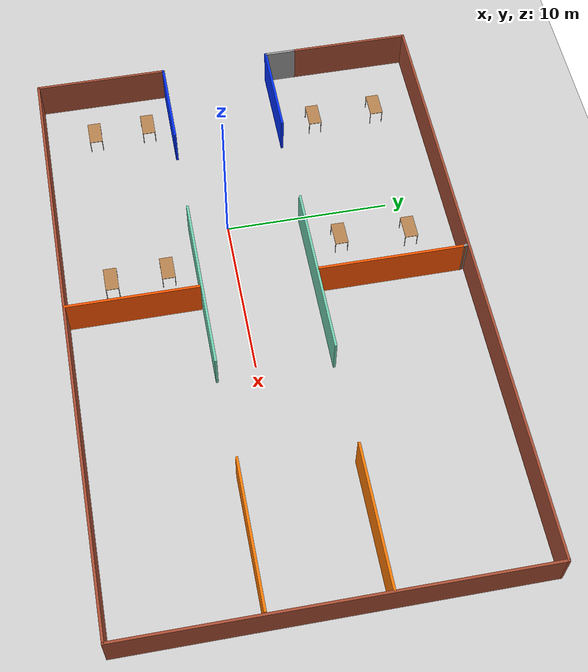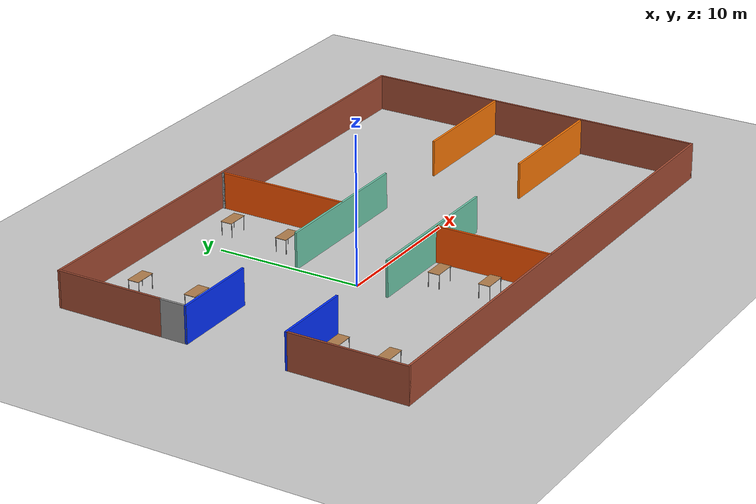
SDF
<sdf version="1.6">
 <world name="default">
  <model name="ground_plane">
   <static>1</static>
   <link name="link">
    <collision name="collision">
     <geometry><plane><normal>0 0 1</normal><size>100 100</size></plane></geometry>
     <surface><friction><ode><mu>100</mu><mu2>50</mu2></ode></friction></surface>
    </collision>
    <visual name="visual">
     <cast_shadows>0</cast_shadows>
     <geometry><plane><normal>0 0 1</normal><size>100 100</size></plane></geometry>
     <material>
      <script><uri>file://media/materials/scripts/gazebo.material</uri><name>Gazebo/Grey</name></script>
     </material>
    </visual>
   </link>
  </model>
  <model name="Chris.world">
   <pose>6.94 1.64 0 0 -0 0</pose>
   <link name="Wall_0">
    <collision name="Wall_0_Collision">
     <geometry><box><size>8.25 0.15 2.5</size></box></geometry>
     <pose>0 0 1.25 0 -0 0</pose>
    </collision>
    <visual name="Wall_0_Visual">
     <pose>0 0 1.25 0 -0 0</pose>
     <geometry><box><size>8.25 0.15 2.5</size></box></geometry>
     <material>
      <script><uri>file://media/materials/scripts/gazebo.material</uri><name>Gazebo/Bricks</name></script>
      <ambient>1 1 1 1</ambient>
     </material>
     <meta><layer>0</layer></meta>
    </visual>
    <pose>-18.3 -8 0 0 0 -1.5708</pose>
   </link>
   <link name="Wall_1">
    <collision name="Wall_1_Collision">
     <geometry><box><size>37 0.15 2.5</size></box></geometry>
     <pose>0 0 1.25 0 -0 0</pose>
    </collision>
    <visual name="Wall_1_Visual">
     <pose>0 0 1.25 0 -0 0</pose>
     <geometry><box><size>37 0.15 2.5</size></box></geometry>
     <material>
      <script><uri>file://media/materials/scripts/gazebo.material</uri><name>Gazebo/Bricks</name></script>
      <ambient>1 1 1 1</ambient>
     </material>
     <meta><layer>0</layer></meta>
    </visual>
    <pose>0.125 -12.05 0 0 -0 0</pose>
   </link>
   <link name="Wall_12">
    <collision name="Wall_12_Collision">
     <geometry><box><size>8.5 0.15 2.5</size></box></geometry>
     <pose>0 0 1.25 0 -0 0</pose>
    </collision>
    <visual name="Wall_12_Visual">
     <pose>0 0 1.25 0 -0 0</pose>
     <geometry><box><size>8.5 0.15 2.5</size></box></geometry>
     <material>
      <script><uri>file://media/materials/scripts/gazebo.material</uri><name>Gazebo/Grey</name></script>
      <ambient>0.996078 0.47451 0.0196078 1</ambient>
     </material>
     <meta><layer>0</layer></meta>
    </visual>
    <pose>14.2814 2.85629 0 0 -0 0</pose>
   </link>
   <link name="Wall_14">
    <collision name="Wall_14_Collision">
     <geometry><box><size>5.5 0.15 2.5</size></box></geometry>
     <pose>0 0 1.25 0 -0 0</pose>
    </collision>
    <visual name="Wall_14_Visual">
     <pose>0 0 1.25 0 -0 0</pose>
     <geometry><box><size>5.5 0.15 2.5</size></box></geometry>
     <material>
      <script><uri>file://media/materials/scripts/gazebo.material</uri><name>Gazebo/Grey</name></script>
      <ambient>0.00784314 0.188235 1 1</ambient>
     </material>
     <meta><layer>0</layer></meta>
    </visual>
    <pose>-15.625 -3.95 0 0 -0 0</pose>
   </link>
   <link name="Wall_17">
    <collision name="Wall_17_Collision">
     <geometry><box><size>11 0.15 2.5</size></box></geometry>
     <pose>0 0 1.25 0 -0 0</pose>
    </collision>
    <visual name="Wall_17_Visual">
     <pose>0 0 1.25 0 -0 0</pose>
     <geometry><box><size>11 0.15 2.5</size></box></geometry>
     <material>
      <script><uri>file://media/materials/scripts/gazebo.material</uri><name>Gazebo/Grey</name></script>
      <ambient>0.435294 0.796078 0.67451 1</ambient>
     </material>
     <meta><layer>0</layer></meta>
    </visual>
    <pose>-1.82182 -3.99491 0 0 -0 0</pose>
   </link>
   <link name="Wall_19">
    <collision name="Wall_19_Collision">
     <geometry><box><size>8.75 0.15 2.5</size></box></geometry>
     <pose>0 0 1.25 0 -0 0</pose>
    </collision>
    <visual name="Wall_19_Visual">
     <pose>0 0 1.25 0 -0 0</pose>
     <geometry><box><size>8.75 0.15 2.5</size></box></geometry>
     <material>
      <script><uri>file://media/materials/scripts/gazebo.material</uri><name>Gazebo/Grey</name></script>
      <ambient>0.996078 0.47451 0.0196078 1</ambient>
     </material>
     <meta><layer>0</layer></meta>
    </visual>
    <pose>14.0613 -3.81137 0 0 -0 0</pose>
   </link>
   <link name="Wall_2">
    <collision name="Wall_2_Collision">
     <geometry><box><size>24.25 0.15 2.5</size></box></geometry>
     <pose>0 0 1.25 0 -0 0</pose>
    </collision>
    <visual name="Wall_2_Visual">
     <pose>0 0 1.25 0 -0 0</pose>
     <geometry><box><size>24.25 0.15 2.5</size></box></geometry>
     <material>
      <script><uri>file://media/materials/scripts/gazebo.material</uri><name>Gazebo/Bricks</name></script>
      <ambient>1 1 1 1</ambient>
     </material>
     <meta><layer>0</layer></meta>
    </visual>
    <pose>18.55 0 0 0 -0 1.5708</pose>
   </link>
   <link name="Wall_21">
    <collision name="Wall_21_Collision">
     <geometry><box><size>8 0.15 2.5</size></box></geometry>
     <pose>0 0 1.25 0 -0 0</pose>
    </collision>
    <visual name="Wall_21_Visual">
     <pose>0 0 1.25 0 -0 0</pose>
     <geometry><box><size>8 0.15 2.5</size></box></geometry>
     <material>
      <script><uri>file://media/materials/scripts/gazebo.material</uri><name>Gazebo/Grey</name></script>
      <ambient>1 0.333333 0 1</ambient>
     </material>
     <meta><layer>0</layer></meta>
    </visual>
    <pose>-1.46527 -8.08455 0 0 -0 1.5708</pose>
   </link>
   <link name="Wall_23">
    <collision name="Wall_23_Collision">
     <geometry><box><size>9 0.15 2.5</size></box></geometry>
     <pose>0 0 1.25 0 -0 0</pose>
    </collision>
    <visual name="Wall_23_Visual">
     <pose>0 0 1.25 0 -0 0</pose>
     <geometry><box><size>9 0.15 2.5</size></box></geometry>
     <material>
      <script><uri>file://media/materials/scripts/gazebo.material</uri><name>Gazebo/Grey</name></script>
      <ambient>1 0.333333 0 1</ambient>
     </material>
     <meta><layer>0</layer></meta>
    </visual>
    <pose>-1.46527 7.36545 0 0 -0 1.5708</pose>
   </link>
   <link name="Wall_24">
    <collision name="Wall_24_Collision">
     <geometry><box><size>0.25 0.15 2.5</size></box></geometry>
     <pose>0 0 1.25 0 -0 0</pose>
    </collision>
    <visual name="Wall_24_Visual">
     <pose>0 0 1.25 0 -0 0</pose>
     <geometry><box><size>0.25 0.15 2.5</size></box></geometry>
     <material>
      <script><uri>file://media/materials/scripts/gazebo.material</uri><name>Gazebo/Grey</name></script>
      <ambient>1 1 1 1</ambient>
     </material>
     <meta><layer>0</layer></meta>
    </visual>
    <pose>-1.47821 11.8387 0 0 -0 1.8326</pose>
   </link>
   <link name="Wall_25">
    <collision name="Wall_25_Collision">
     <geometry><box><size>0.25 0.15 2.5</size></box></geometry>
     <pose>0 0 1.25 0 -0 0</pose>
    </collision>
    <visual name="Wall_25_Visual">
     <pose>0 0 1.25 0 -0 0</pose>
     <geometry><box><size>0.25 0.15 2.5</size></box></geometry>
     <material>
      <script><uri>file://media/materials/scripts/gazebo.material</uri><name>Gazebo/Grey</name></script>
      <ambient>1 1 1 1</ambient>
     </material>
     <meta><layer>0</layer></meta>
    </visual>
    <pose>-1.47821 11.8387 0 0 0 -1.309</pose>
   </link>
   <link name="Wall_3">
    <collision name="Wall_3_Collision">
     <geometry><box><size>37.25 0.15 2.5</size></box></geometry>
     <pose>0 0 1.25 0 -0 0</pose>
    </collision>
    <visual name="Wall_3_Visual">
     <pose>0 0 1.25 0 -0 0</pose>
     <geometry><box><size>37.25 0.15 2.5</size></box></geometry>
     <material>
      <script><uri>file://media/materials/scripts/gazebo.material</uri><name>Gazebo/Bricks</name></script>
      <ambient>1 1 1 1</ambient>
     </material>
     <meta><layer>0</layer></meta>
    </visual>
    <pose>0 12.05 0 0 -0 3.14159</pose>
   </link>
   <link name="Wall_4">
    <collision name="Wall_4_Collision">
     <geometry><box><size>7.5 0.15 2.5</size></box></geometry>
     <pose>0 0 1.25 0 -0 0</pose>
    </collision>
    <visual name="Wall_4_Visual">
     <pose>0 0 1.25 0 -0 0</pose>
     <geometry><box><size>7.5 0.15 2.5</size></box></geometry>
     <material>
      <script><uri>file://media/materials/scripts/gazebo.material</uri><name>Gazebo/Bricks</name></script>
      <ambient>1 1 1 1</ambient>
     </material>
     <meta><layer>0</layer></meta>
    </visual>
    <pose>-18.55 8.375 0 0 0 -1.5708</pose>
   </link>
   <link name="Wall_5">
    <collision name="Wall_5_Collision">
     <geometry><box><size>2 0.15 2.5</size></box></geometry>
     <pose>0 0 1.25 0 -0 0</pose>
    </collision>
    <visual name="Wall_5_Visual">
     <pose>0 0 1.25 0 -0 0</pose>
     <geometry><box><size>2 0.15 2.5</size></box></geometry>
     <material>
      <script><uri>file://media/materials/scripts/gazebo.material</uri><name>Gazebo/Grey</name></script>
      <ambient>1 1 1 1</ambient>
     </material>
     <meta><layer>0</layer></meta>
    </visual>
    <pose>-18.55 3.775 0 0 0 -1.5708</pose>
   </link>
   <link name="Wall_6">
    <collision name="Wall_6_Collision">
     <geometry><box><size>6 0.15 2.5</size></box></geometry>
     <pose>0 0 1.25 0 -0 0</pose>
    </collision>
    <visual name="Wall_6_Visual">
     <pose>0 0 1.25 0 -0 0</pose>
     <geometry><box><size>6 0.15 2.5</size></box></geometry>
     <material>
      <script><uri>file://media/materials/scripts/gazebo.material</uri><name>Gazebo/Grey</name></script>
      <ambient>0.00784314 0.188235 1 1</ambient>
     </material>
     <meta><layer>0</layer></meta>
    </visual>
    <pose>-15.625 2.85 0 0 -0 0</pose>
   </link>
   <link name="Wall_9">
    <collision name="Wall_9_Collision">
     <geometry><box><size>10.75 0.15 2.5</size></box></geometry>
     <pose>0 0 1.25 0 -0 0</pose>
    </collision>
    <visual name="Wall_9_Visual">
     <pose>0 0 1.25 0 -0 0</pose>
     <geometry><box><size>10.75 0.15 2.5</size></box></geometry>
     <material>
      <script><uri>file://media/materials/scripts/gazebo.material</uri><name>Gazebo/Grey</name></script>
      <ambient>0.435294 0.796078 0.67451 1</ambient>
     </material>
     <meta><layer>0</layer></meta>
    </visual>
    <pose>-1.47151 2.85629 0 0 -0 0</pose>
   </link>
   <static>1</static>
  </model>
  <model name="table">
   <static>1</static>
   <link name="link">
    <collision name="surface">
     <pose>0 0 1 0 -0 0</pose>
     <geometry><box><size>1.5 0.8 0.03</size></box></geometry>
     <surface><friction><ode><mu>0.6</mu><mu2>0.6</mu2></ode></friction></surface>
    </collision>
    <visual name="visual1">
     <pose>0 0 1 0 -0 0</pose>
     <geometry><box><size>1.5 0.8 0.03</size></box></geometry>
     <material>
      <script><uri>file://media/materials/scripts/gazebo.material</uri><name>Gazebo/Wood</name></script>
     </material>
    </visual>
    <collision name="front_left_leg">
     <pose>0.68 0.38 0.5 0 -0 0</pose>
     <geometry><cylinder><radius>0.02</radius><length>1</length></cylinder></geometry>
    </collision>
    <visual name="front_left_leg">
     <pose>0.68 0.38 0.5 0 -0 0</pose>
     <geometry><cylinder><radius>0.02</radius><length>1</length></cylinder></geometry>
     <material>
      <script><uri>file://media/materials/scripts/gazebo.material</uri><name>Gazebo/Grey</name></script>
     </material>
    </visual>
    <collision name="front_right_leg">
     <pose>0.68 -0.38 0.5 0 -0 0</pose>
     <geometry><cylinder><radius>0.02</radius><length>1</length></cylinder></geometry>
    </collision>
    <visual name="front_right_leg">
     <pose>0.68 -0.38 0.5 0 -0 0</pose>
     <geometry><cylinder><radius>0.02</radius><length>1</length></cylinder></geometry>
     <material>
      <script><uri>file://media/materials/scripts/gazebo.material</uri><name>Gazebo/Grey</name></script>
     </material>
    </visual>
    <collision name="back_right_leg">
     <pose>-0.68 -0.38 0.5 0 -0 0</pose>
     <geometry><cylinder><radius>0.02</radius><length>1</length></cylinder></geometry>
    </collision>
    <visual name="back_right_leg">
     <pose>-0.68 -0.38 0.5 0 -0 0</pose>
     <geometry><cylinder><radius>0.02</radius><length>1</length></cylinder></geometry>
     <material>
      <script><uri>file://media/materials/scripts/gazebo.material</uri><name>Gazebo/Grey</name></script>
     </material>
    </visual>
    <collision name="back_left_leg">
     <pose>-0.68 0.38 0.5 0 -0 0</pose>
     <geometry><cylinder><radius>0.02</radius><length>1</length></cylinder></geometry>
    </collision>
    <visual name="back_left_leg">
     <pose>-0.68 0.38 0.5 0 -0 0</pose>
     <geometry><cylinder><radius>0.02</radius><length>1</length></cylinder></geometry>
     <material>
      <script><uri>file://media/materials/scripts/gazebo.material</uri><name>Gazebo/Grey</name></script>
     </material>
    </visual>
   </link>
   <pose>2.8826 -4.13337 0 0 -0 0</pose>
  </model>
  <model name="table_clone">
   <static>1</static>
   <link name="link">
    <collision name="surface">
     <pose>0 0 1 0 -0 0</pose>
     <geometry><box><size>1.5 0.8 0.03</size></box></geometry>
     <surface><friction><ode><mu>0.6</mu><mu2>0.6</mu2></ode></friction></surface>
    </collision>
    <visual name="visual1">
     <pose>0 0 1 0 -0 0</pose>
     <geometry><box><size>1.5 0.8 0.03</size></box></geometry>
     <material>
      <script><uri>file://media/materials/scripts/gazebo.material</uri><name>Gazebo/Wood</name></script>
     </material>
    </visual>
    <collision name="front_left_leg">
     <pose>0.68 0.38 0.5 0 -0 0</pose>
     <geometry><cylinder><radius>0.02</radius><length>1</length></cylinder></geometry>
    </collision>
    <visual name="front_left_leg">
     <pose>0.68 0.38 0.5 0 -0 0</pose>
     <geometry><cylinder><radius>0.02</radius><length>1</length></cylinder></geometry>
     <material>
      <script><uri>file://media/materials/scripts/gazebo.material</uri><name>Gazebo/Grey</name></script>
     </material>
    </visual>
    <collision name="front_right_leg">
     <pose>0.68 -0.38 0.5 0 -0 0</pose>
     <geometry><cylinder><radius>0.02</radius><length>1</length></cylinder></geometry>
    </collision>
    <visual name="front_right_leg">
     <pose>0.68 -0.38 0.5 0 -0 0</pose>
     <geometry><cylinder><radius>0.02</radius><length>1</length></cylinder></geometry>
     <material>
      <script><uri>file://media/materials/scripts/gazebo.material</uri><name>Gazebo/Grey</name></script>
     </material>
    </visual>
    <collision name="back_right_leg">
     <pose>-0.68 -0.38 0.5 0 -0 0</pose>
     <geometry><cylinder><radius>0.02</radius><length>1</length></cylinder></geometry>
    </collision>
    <visual name="back_right_leg">
     <pose>-0.68 -0.38 0.5 0 -0 0</pose>
     <geometry><cylinder><radius>0.02</radius><length>1</length></cylinder></geometry>
     <material>
      <script><uri>file://media/materials/scripts/gazebo.material</uri><name>Gazebo/Grey</name></script>
     </material>
    </visual>
    <collision name="back_left_leg">
     <pose>-0.68 0.38 0.5 0 -0 0</pose>
     <geometry><cylinder><radius>0.02</radius><length>1</length></cylinder></geometry>
    </collision>
    <visual name="back_left_leg">
     <pose>-0.68 0.38 0.5 0 -0 0</pose>
     <geometry><cylinder><radius>0.02</radius><length>1</length></cylinder></geometry>
     <material>
      <script><uri>file://media/materials/scripts/gazebo.material</uri><name>Gazebo/Grey</name></script>
     </material>
    </visual>
   </link>
   <pose>3.07018 -7.55176 0 0 -0 0</pose>
  </model>
  <model name="table_clone_0">
   <static>1</static>
   <link name="link">
    <collision name="surface">
     <pose>0 0 1 0 -0 0</pose>
     <geometry><box><size>1.5 0.8 0.03</size></box></geometry>
     <surface><friction><ode><mu>0.6</mu><mu2>0.6</mu2></ode></friction></surface>
    </collision>
    <visual name="visual1">
     <pose>0 0 1 0 -0 0</pose>
     <geometry><box><size>1.5 0.8 0.03</size></box></geometry>
     <material>
      <script><uri>file://media/materials/scripts/gazebo.material</uri><name>Gazebo/Wood</name></script>
     </material>
    </visual>
    <collision name="front_left_leg">
     <pose>0.68 0.38 0.5 0 -0 0</pose>
     <geometry><cylinder><radius>0.02</radius><length>1</length></cylinder></geometry>
    </collision>
    <visual name="front_left_leg">
     <pose>0.68 0.38 0.5 0 -0 0</pose>
     <geometry><cylinder><radius>0.02</radius><length>1</length></cylinder></geometry>
     <material>
      <script><uri>file://media/materials/scripts/gazebo.material</uri><name>Gazebo/Grey</name></script>
     </material>
    </visual>
    <collision name="front_right_leg">
     <pose>0.68 -0.38 0.5 0 -0 0</pose>
     <geometry><cylinder><radius>0.02</radius><length>1</length></cylinder></geometry>
    </collision>
    <visual name="front_right_leg">
     <pose>0.68 -0.38 0.5 0 -0 0</pose>
     <geometry><cylinder><radius>0.02</radius><length>1</length></cylinder></geometry>
     <material>
      <script><uri>file://media/materials/scripts/gazebo.material</uri><name>Gazebo/Grey</name></script>
     </material>
    </visual>
    <collision name="back_right_leg">
     <pose>-0.68 -0.38 0.5 0 -0 0</pose>
     <geometry><cylinder><radius>0.02</radius><length>1</length></cylinder></geometry>
    </collision>
    <visual name="back_right_leg">
     <pose>-0.68 -0.38 0.5 0 -0 0</pose>
     <geometry><cylinder><radius>0.02</radius><length>1</length></cylinder></geometry>
     <material>
      <script><uri>file://media/materials/scripts/gazebo.material</uri><name>Gazebo/Grey</name></script>
     </material>
    </visual>
    <collision name="back_left_leg">
     <pose>-0.68 0.38 0.5 0 -0 0</pose>
     <geometry><cylinder><radius>0.02</radius><length>1</length></cylinder></geometry>
    </collision>
    <visual name="back_left_leg">
     <pose>-0.68 0.38 0.5 0 -0 0</pose>
     <geometry><cylinder><radius>0.02</radius><length>1</length></cylinder></geometry>
     <material>
      <script><uri>file://media/materials/scripts/gazebo.material</uri><name>Gazebo/Grey</name></script>
     </material>
    </visual>
   </link>
   <pose>-8.38132 -3.84725 0 0 -0 0</pose>
  </model>
  <model name="table_clone_1">
   <static>1</static>
   <link name="link">
    <collision name="surface">
     <pose>0 0 1 0 -0 0</pose>
     <geometry><box><size>1.5 0.8 0.03</size></box></geometry>
     <surface><friction><ode><mu>0.6</mu><mu2>0.6</mu2></ode></friction></surface>
    </collision>
    <visual name="visual1">
     <pose>0 0 1 0 -0 0</pose>
     <geometry><box><size>1.5 0.8 0.03</size></box></geometry>
     <material>
      <script><uri>file://media/materials/scripts/gazebo.material</uri><name>Gazebo/Wood</name></script>
     </material>
    </visual>
    <collision name="front_left_leg">
     <pose>0.68 0.38 0.5 0 -0 0</pose>
     <geometry><cylinder><radius>0.02</radius><length>1</length></cylinder></geometry>
    </collision>
    <visual name="front_left_leg">
     <pose>0.68 0.38 0.5 0 -0 0</pose>
     <geometry><cylinder><radius>0.02</radius><length>1</length></cylinder></geometry>
     <material>
      <script><uri>file://media/materials/scripts/gazebo.material</uri><name>Gazebo/Grey</name></script>
     </material>
    </visual>
    <collision name="front_right_leg">
     <pose>0.68 -0.38 0.5 0 -0 0</pose>
     <geometry><cylinder><radius>0.02</radius><length>1</length></cylinder></geometry>
    </collision>
    <visual name="front_right_leg">
     <pose>0.68 -0.38 0.5 0 -0 0</pose>
     <geometry><cylinder><radius>0.02</radius><length>1</length></cylinder></geometry>
     <material>
      <script><uri>file://media/materials/scripts/gazebo.material</uri><name>Gazebo/Grey</name></script>
     </material>
    </visual>
    <collision name="back_right_leg">
     <pose>-0.68 -0.38 0.5 0 -0 0</pose>
     <geometry><cylinder><radius>0.02</radius><length>1</length></cylinder></geometry>
    </collision>
    <visual name="back_right_leg">
     <pose>-0.68 -0.38 0.5 0 -0 0</pose>
     <geometry><cylinder><radius>0.02</radius><length>1</length></cylinder></geometry>
     <material>
      <script><uri>file://media/materials/scripts/gazebo.material</uri><name>Gazebo/Grey</name></script>
     </material>
    </visual>
    <collision name="back_left_leg">
     <pose>-0.68 0.38 0.5 0 -0 0</pose>
     <geometry><cylinder><radius>0.02</radius><length>1</length></cylinder></geometry>
    </collision>
    <visual name="back_left_leg">
     <pose>-0.68 0.38 0.5 0 -0 0</pose>
     <geometry><cylinder><radius>0.02</radius><length>1</length></cylinder></geometry>
     <material>
      <script><uri>file://media/materials/scripts/gazebo.material</uri><name>Gazebo/Grey</name></script>
     </material>
    </visual>
   </link>
   <pose>-8.26484 -7.26701 0 0 -0 0</pose>
  </model>
  <model name="table_clone_2">
   <static>1</static>
   <link name="link">
    <collision name="surface">
     <pose>0 0 1 0 -0 0</pose>
     <geometry><box><size>1.5 0.8 0.03</size></box></geometry>
     <surface><friction><ode><mu>0.6</mu><mu2>0.6</mu2></ode></friction></surface>
    </collision>
    <visual name="visual1">
     <pose>0 0 1 0 -0 0</pose>
     <geometry><box><size>1.5 0.8 0.03</size></box></geometry>
     <material>
      <script><uri>file://media/materials/scripts/gazebo.material</uri><name>Gazebo/Wood</name></script>
     </material>
    </visual>
    <collision name="front_left_leg">
     <pose>0.68 0.38 0.5 0 -0 0</pose>
     <geometry><cylinder><radius>0.02</radius><length>1</length></cylinder></geometry>
    </collision>
    <visual name="front_left_leg">
     <pose>0.68 0.38 0.5 0 -0 0</pose>
     <geometry><cylinder><radius>0.02</radius><length>1</length></cylinder></geometry>
     <material>
      <script><uri>file://media/materials/scripts/gazebo.material</uri><name>Gazebo/Grey</name></script>
     </material>
    </visual>
    <collision name="front_right_leg">
     <pose>0.68 -0.38 0.5 0 -0 0</pose>
     <geometry><cylinder><radius>0.02</radius><length>1</length></cylinder></geometry>
    </collision>
    <visual name="front_right_leg">
     <pose>0.68 -0.38 0.5 0 -0 0</pose>
     <geometry><cylinder><radius>0.02</radius><length>1</length></cylinder></geometry>
     <material>
      <script><uri>file://media/materials/scripts/gazebo.material</uri><name>Gazebo/Grey</name></script>
     </material>
    </visual>
    <collision name="back_right_leg">
     <pose>-0.68 -0.38 0.5 0 -0 0</pose>
     <geometry><cylinder><radius>0.02</radius><length>1</length></cylinder></geometry>
    </collision>
    <visual name="back_right_leg">
     <pose>-0.68 -0.38 0.5 0 -0 0</pose>
     <geometry><cylinder><radius>0.02</radius><length>1</length></cylinder></geometry>
     <material>
      <script><uri>file://media/materials/scripts/gazebo.material</uri><name>Gazebo/Grey</name></script>
     </material>
    </visual>
    <collision name="back_left_leg">
     <pose>-0.68 0.38 0.5 0 -0 0</pose>
     <geometry><cylinder><radius>0.02</radius><length>1</length></cylinder></geometry>
    </collision>
    <visual name="back_left_leg">
     <pose>-0.68 0.38 0.5 0 -0 0</pose>
     <geometry><cylinder><radius>0.02</radius><length>1</length></cylinder></geometry>
     <material>
      <script><uri>file://media/materials/scripts/gazebo.material</uri><name>Gazebo/Grey</name></script>
     </material>
    </visual>
   </link>
   <pose>2.25752 6.57312 0 0 -0 0</pose>
  </model>
  <model name="table_clone_3">
   <static>1</static>
   <link name="link">
    <collision name="surface">
     <pose>0 0 1 0 -0 0</pose>
     <geometry><box><size>1.5 0.8 0.03</size></box></geometry>
     <surface><friction><ode><mu>0.6</mu><mu2>0.6</mu2></ode></friction></surface>
    </collision>
    <visual name="visual1">
     <pose>0 0 1 0 -0 0</pose>
     <geometry><box><size>1.5 0.8 0.03</size></box></geometry>
     <material>
      <script><uri>file://media/materials/scripts/gazebo.material</uri><name>Gazebo/Wood</name></script>
     </material>
    </visual>
    <collision name="front_left_leg">
     <pose>0.68 0.38 0.5 0 -0 0</pose>
     <geometry><cylinder><radius>0.02</radius><length>1</length></cylinder></geometry>
    </collision>
    <visual name="front_left_leg">
     <pose>0.68 0.38 0.5 0 -0 0</pose>
     <geometry><cylinder><radius>0.02</radius><length>1</length></cylinder></geometry>
     <material>
      <script><uri>file://media/materials/scripts/gazebo.material</uri><name>Gazebo/Grey</name></script>
     </material>
    </visual>
    <collision name="front_right_leg">
     <pose>0.68 -0.38 0.5 0 -0 0</pose>
     <geometry><cylinder><radius>0.02</radius><length>1</length></cylinder></geometry>
    </collision>
    <visual name="front_right_leg">
     <pose>0.68 -0.38 0.5 0 -0 0</pose>
     <geometry><cylinder><radius>0.02</radius><length>1</length></cylinder></geometry>
     <material>
      <script><uri>file://media/materials/scripts/gazebo.material</uri><name>Gazebo/Grey</name></script>
     </material>
    </visual>
    <collision name="back_right_leg">
     <pose>-0.68 -0.38 0.5 0 -0 0</pose>
     <geometry><cylinder><radius>0.02</radius><length>1</length></cylinder></geometry>
    </collision>
    <visual name="back_right_leg">
     <pose>-0.68 -0.38 0.5 0 -0 0</pose>
     <geometry><cylinder><radius>0.02</radius><length>1</length></cylinder></geometry>
     <material>
      <script><uri>file://media/materials/scripts/gazebo.material</uri><name>Gazebo/Grey</name></script>
     </material>
    </visual>
    <collision name="back_left_leg">
     <pose>-0.68 0.38 0.5 0 -0 0</pose>
     <geometry><cylinder><radius>0.02</radius><length>1</length></cylinder></geometry>
    </collision>
    <visual name="back_left_leg">
     <pose>-0.68 0.38 0.5 0 -0 0</pose>
     <geometry><cylinder><radius>0.02</radius><length>1</length></cylinder></geometry>
     <material>
      <script><uri>file://media/materials/scripts/gazebo.material</uri><name>Gazebo/Grey</name></script>
     </material>
    </visual>
   </link>
   <pose>2.52605 10.8682 0 0 -0 0</pose>
  </model>
  <model name="table_clone_4">
   <static>1</static>
   <link name="link">
    <collision name="surface">
     <pose>0 0 1 0 -0 0</pose>
     <geometry><box><size>1.5 0.8 0.03</size></box></geometry>
     <surface><friction><ode><mu>0.6</mu><mu2>0.6</mu2></ode></friction></surface>
    </collision>
    <visual name="visual1">
     <pose>0 0 1 0 -0 0</pose>
     <geometry><box><size>1.5 0.8 0.03</size></box></geometry>
     <material>
      <script><uri>file://media/materials/scripts/gazebo.material</uri><name>Gazebo/Wood</name></script>
     </material>
    </visual>
    <collision name="front_left_leg">
     <pose>0.68 0.38 0.5 0 -0 0</pose>
     <geometry><cylinder><radius>0.02</radius><length>1</length></cylinder></geometry>
    </collision>
    <visual name="front_left_leg">
     <pose>0.68 0.38 0.5 0 -0 0</pose>
     <geometry><cylinder><radius>0.02</radius><length>1</length></cylinder></geometry>
     <material>
      <script><uri>file://media/materials/scripts/gazebo.material</uri><name>Gazebo/Grey</name></script>
     </material>
    </visual>
    <collision name="front_right_leg">
     <pose>0.68 -0.38 0.5 0 -0 0</pose>
     <geometry><cylinder><radius>0.02</radius><length>1</length></cylinder></geometry>
    </collision>
    <visual name="front_right_leg">
     <pose>0.68 -0.38 0.5 0 -0 0</pose>
     <geometry><cylinder><radius>0.02</radius><length>1</length></cylinder></geometry>
     <material>
      <script><uri>file://media/materials/scripts/gazebo.material</uri><name>Gazebo/Grey</name></script>
     </material>
    </visual>
    <collision name="back_right_leg">
     <pose>-0.68 -0.38 0.5 0 -0 0</pose>
     <geometry><cylinder><radius>0.02</radius><length>1</length></cylinder></geometry>
    </collision>
    <visual name="back_right_leg">
     <pose>-0.68 -0.38 0.5 0 -0 0</pose>
     <geometry><cylinder><radius>0.02</radius><length>1</length></cylinder></geometry>
     <material>
      <script><uri>file://media/materials/scripts/gazebo.material</uri><name>Gazebo/Grey</name></script>
     </material>
    </visual>
    <collision name="back_left_leg">
     <pose>-0.68 0.38 0.5 0 -0 0</pose>
     <geometry><cylinder><radius>0.02</radius><length>1</length></cylinder></geometry>
    </collision>
    <visual name="back_left_leg">
     <pose>-0.68 0.38 0.5 0 -0 0</pose>
     <geometry><cylinder><radius>0.02</radius><length>1</length></cylinder></geometry>
     <material>
      <script><uri>file://media/materials/scripts/gazebo.material</uri><name>Gazebo/Grey</name></script>
     </material>
    </visual>
   </link>
   <pose>-7.25403 6.8276 0 0 -0 0</pose>
  </model>
  <model name="table_clone_5">
   <static>1</static>
   <link name="link">
    <collision name="surface">
     <pose>0 0 1 0 -0 0</pose>
     <geometry><box><size>1.5 0.8 0.03</size></box></geometry>
     <surface><friction><ode><mu>0.6</mu><mu2>0.6</mu2></ode></friction></surface>
    </collision>
    <visual name="visual1">
     <pose>0 0 1 0 -0 0</pose>
     <geometry><box><size>1.5 0.8 0.03</size></box></geometry>
     <material>
      <script><uri>file://media/materials/scripts/gazebo.material</uri><name>Gazebo/Wood</name></script>
     </material>
    </visual>
    <collision name="front_left_leg">
     <pose>0.68 0.38 0.5 0 -0 0</pose>
     <geometry><cylinder><radius>0.02</radius><length>1</length></cylinder></geometry>
    </collision>
    <visual name="front_left_leg">
     <pose>0.68 0.38 0.5 0 -0 0</pose>
     <geometry><cylinder><radius>0.02</radius><length>1</length></cylinder></geometry>
     <material>
      <script><uri>file://media/materials/scripts/gazebo.material</uri><name>Gazebo/Grey</name></script>
     </material>
    </visual>
    <collision name="front_right_leg">
     <pose>0.68 -0.38 0.5 0 -0 0</pose>
     <geometry><cylinder><radius>0.02</radius><length>1</length></cylinder></geometry>
    </collision>
    <visual name="front_right_leg">
     <pose>0.68 -0.38 0.5 0 -0 0</pose>
     <geometry><cylinder><radius>0.02</radius><length>1</length></cylinder></geometry>
     <material>
      <script><uri>file://media/materials/scripts/gazebo.material</uri><name>Gazebo/Grey</name></script>
     </material>
    </visual>
    <collision name="back_right_leg">
     <pose>-0.68 -0.38 0.5 0 -0 0</pose>
     <geometry><cylinder><radius>0.02</radius><length>1</length></cylinder></geometry>
    </collision>
    <visual name="back_right_leg">
     <pose>-0.68 -0.38 0.5 0 -0 0</pose>
     <geometry><cylinder><radius>0.02</radius><length>1</length></cylinder></geometry>
     <material>
      <script><uri>file://media/materials/scripts/gazebo.material</uri><name>Gazebo/Grey</name></script>
     </material>
    </visual>
    <collision name="back_left_leg">
     <pose>-0.68 0.38 0.5 0 -0 0</pose>
     <geometry><cylinder><radius>0.02</radius><length>1</length></cylinder></geometry>
    </collision>
    <visual name="back_left_leg">
     <pose>-0.68 0.38 0.5 0 -0 0</pose>
     <geometry><cylinder><radius>0.02</radius><length>1</length></cylinder></geometry>
     <material>
      <script><uri>file://media/materials/scripts/gazebo.material</uri><name>Gazebo/Grey</name></script>
     </material>
    </visual>
   </link>
   <pose>-7.37979 10.895 0 0 -0 0</pose>
  </model>
 </world>
</sdf>
